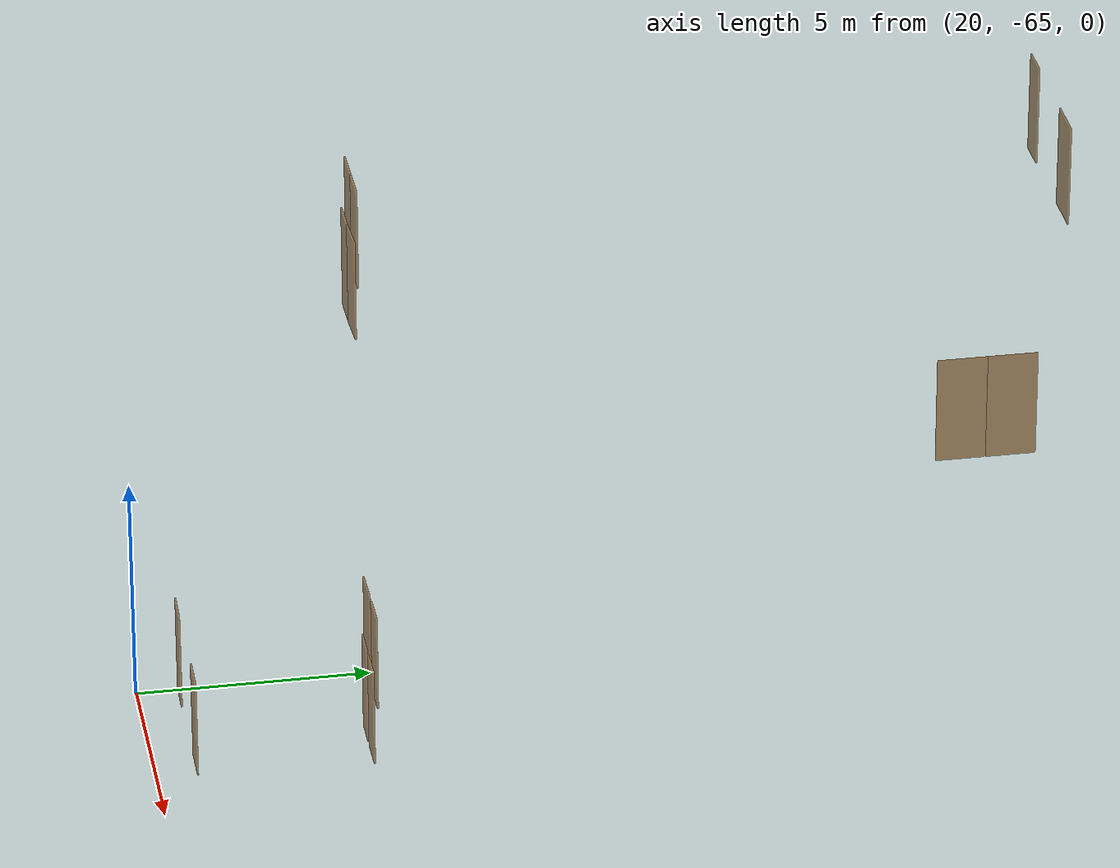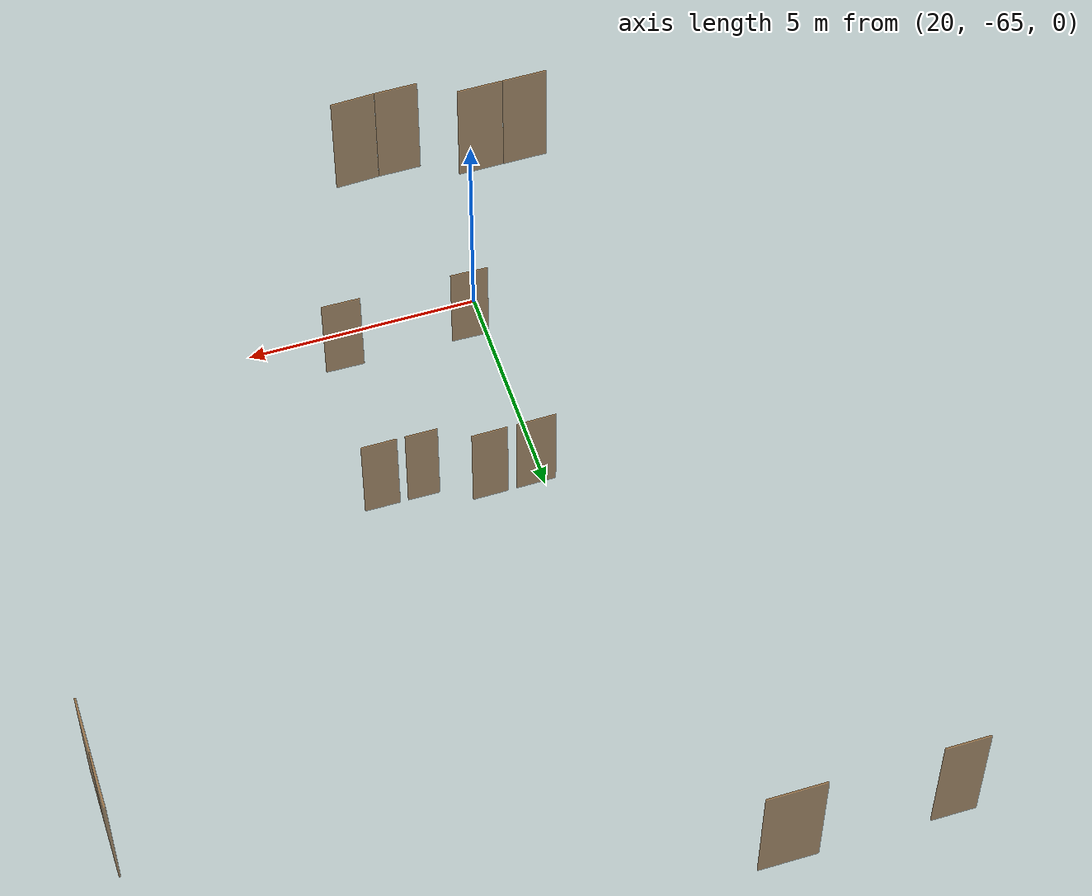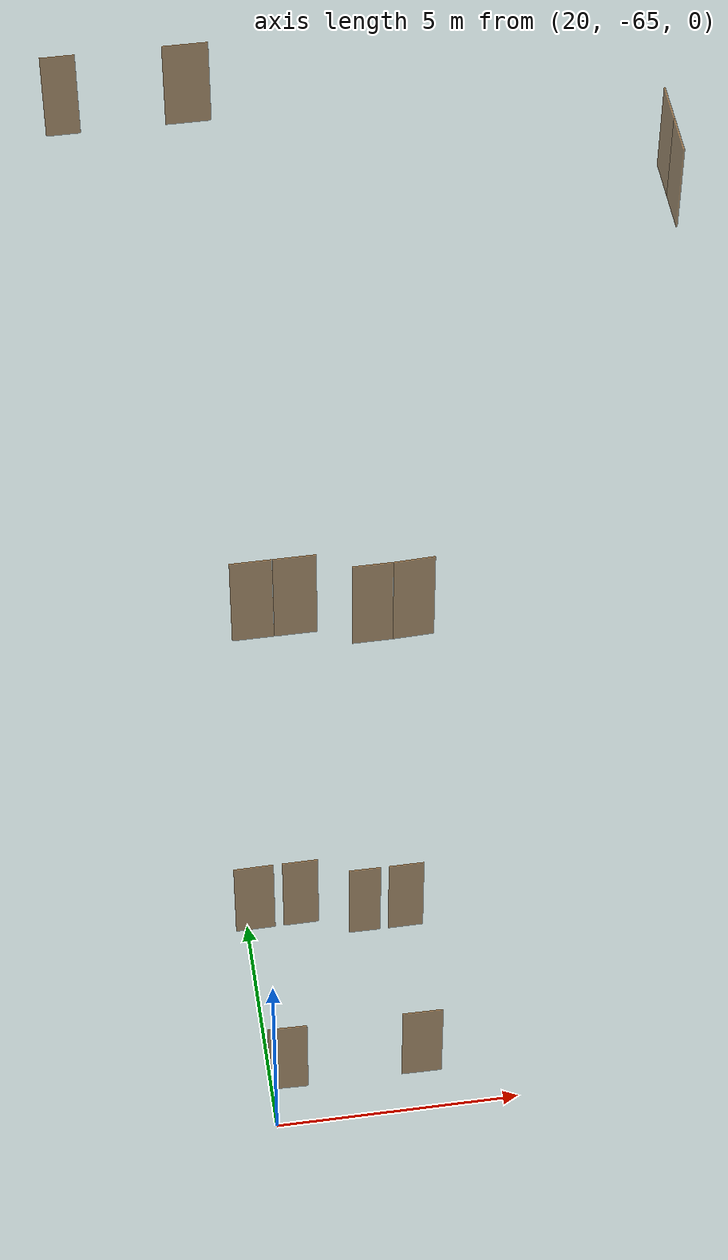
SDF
<sdf version="1.7">
 <world name="sim_world">
  <model name="part5_3">
   <pose>20.173143498738547 -60.075175110173454 0.0 0 0 -3.1320734402905437</pose>
   <link name="right">
    <pose>0 0 1.11 0 0 0</pose>
    <visual name="right_visual">
     <geometry><box><size>0.8412739938981753 0.03 2.2</size></box></geometry>
     <material>
      <ambient>0.5 0.25 0 0.6</ambient>
      <diffuse>0.5 0.25 0 0.6</diffuse>
      <pbr><metal><metalness>0.0</metalness></metal></pbr>
     </material>
    </visual>
    <collision name="right_collision">
     <geometry><box><size>0.8412739938981753 0.03 2.2</size></box></geometry>
     <surface><contact><collide_bitmask>0x02</collide_bitmask></contact></surface>
    </collision>
    <inertial>
     <mass>50.0</mass>
     <inertia><ixx>20.17041666666667</ixx><iyy>23.11559138670578</iyy><izz>2.952674720039113</izz></inertia>
    </inertial>
   </link>
   <joint name="right_joint" type="revolute">
    <parent>world</parent>
    <child>right</child>
    <axis><xyz>0 0 -1</xyz><limit><lower>0</lower><upper>1.57</upper></limit></axis>
    <pose>0.42563699694908763 0 0 0 0 0</pose>
   </joint>
   <plugin name="register_component" filename="libregister_component.so">
    <component name="Door">
     <v_max_door>0.5</v_max_door>
     <a_max_door>0.3</a_max_door>
     <a_nom_door>0.15</a_nom_door>
     <dx_min_door>0.01</dx_min_door>
     <f_max_door>500.0</f_max_door>
     <ros_interface>true</ros_interface>
     <door name="part5_3" type="SwingDoor" left_joint_name="empty_joint" right_joint_name="right_joint"/>
    </component>
   </plugin>
  </model>
  <model name="part5_4">
   <pose>21.1585172209726 -60.06836349378341 0.0 0 0 -3.134354941226034</pose>
   <link name="right">
    <pose>0 0 1.11 0 0 0</pose>
    <visual name="right_visual">
     <geometry><box><size>0.7526642721148585 0.03 2.2</size></box></geometry>
     <material>
      <ambient>0.5 0.25 0 0.6</ambient>
      <diffuse>0.5 0.25 0 0.6</diffuse>
      <pbr><metal><metalness>0.0</metalness></metal></pbr>
     </material>
    </visual>
    <collision name="right_collision">
     <geometry><box><size>0.7526642721148585 0.03 2.2</size></box></geometry>
     <surface><contact><collide_bitmask>0x02</collide_bitmask></contact></surface>
    </collision>
    <inertial>
     <mass>50.0</mass>
     <inertia><ixx>20.17041666666667</ixx><iyy>22.527097943825797</iyy><izz>2.3641812771591244</izz></inertia>
    </inertial>
   </link>
   <joint name="right_joint" type="revolute">
    <parent>world</parent>
    <child>right</child>
    <axis><xyz>0 0 1</xyz><limit><lower>0</lower><upper>1.57</upper></limit></axis>
    <pose>0.38133213605742927 0 0 0 0 0</pose>
   </joint>
   <plugin name="register_component" filename="libregister_component.so">
    <component name="Door">
     <v_max_door>0.5</v_max_door>
     <a_max_door>0.3</a_max_door>
     <a_nom_door>0.15</a_nom_door>
     <dx_min_door>0.01</dx_min_door>
     <f_max_door>500.0</f_max_door>
     <ros_interface>true</ros_interface>
     <door name="part5_4" type="SwingDoor" left_joint_name="empty_joint" right_joint_name="right_joint"/>
    </component>
   </plugin>
  </model>
  <model name="part5_5">
   <pose>22.475253214732483 -60.4579173479677 0.0 0 0 3.1318064891371975</pose>
   <link name="right">
    <pose>0 0 1.11 0 0 0</pose>
    <visual name="right_visual">
     <geometry><box><size>0.6753985658869284 0.03 2.2</size></box></geometry>
     <material>
      <ambient>0.5 0.25 0 0.6</ambient>
      <diffuse>0.5 0.25 0 0.6</diffuse>
      <pbr><metal><metalness>0.0</metalness></metal></pbr>
     </material>
    </visual>
    <collision name="right_collision">
     <geometry><box><size>0.6753985658869284 0.03 2.2</size></box></geometry>
     <surface><contact><collide_bitmask>0x02</collide_bitmask></contact></surface>
    </collision>
    <inertial>
     <mass>50.0</mass>
     <inertia><ixx>20.17041666666667</ixx><iyy>22.067346761675502</iyy><izz>1.9044300950088315</izz></inertia>
    </inertial>
   </link>
   <joint name="right_joint" type="revolute">
    <parent>world</parent>
    <child>right</child>
    <axis><xyz>0 0 -1</xyz><limit><lower>0</lower><upper>1.57</upper></limit></axis>
    <pose>0.3426992829434642 0 0 0 0 0</pose>
   </joint>
   <plugin name="register_component" filename="libregister_component.so">
    <component name="Door">
     <v_max_door>0.5</v_max_door>
     <a_max_door>0.3</a_max_door>
     <a_nom_door>0.15</a_nom_door>
     <dx_min_door>0.01</dx_min_door>
     <f_max_door>500.0</f_max_door>
     <ros_interface>true</ros_interface>
     <door name="part5_5" type="SwingDoor" left_joint_name="empty_joint" right_joint_name="right_joint"/>
    </component>
   </plugin>
  </model>
  <model name="part5_6">
   <pose>23.359848711436015 -60.46050881097593 0.0 0 0 -3.1395744714216227</pose>
   <link name="right">
    <pose>0 0 1.11 0 0 0</pose>
    <visual name="right_visual">
     <geometry><box><size>0.7453287625419571 0.03 2.2</size></box></geometry>
     <material>
      <ambient>0.5 0.25 0 0.6</ambient>
      <diffuse>0.5 0.25 0 0.6</diffuse>
      <pbr><metal><metalness>0.0</metalness></metal></pbr>
     </material>
    </visual>
    <collision name="right_collision">
     <geometry><box><size>0.7453287625419571 0.03 2.2</size></box></geometry>
     <surface><contact><collide_bitmask>0x02</collide_bitmask></contact></surface>
    </collision>
    <inertial>
     <mass>50.0</mass>
     <inertia><ixx>20.17041666666667</ixx><iyy>22.481312351134694</iyy><izz>2.3183956844680216</izz></inertia>
    </inertial>
   </link>
   <joint name="right_joint" type="revolute">
    <parent>world</parent>
    <child>right</child>
    <axis><xyz>0 0 1</xyz><limit><lower>0</lower><upper>1.57</upper></limit></axis>
    <pose>0.37766438127097857 0 0 0 0 0</pose>
   </joint>
   <plugin name="register_component" filename="libregister_component.so">
    <component name="Door">
     <v_max_door>0.5</v_max_door>
     <a_max_door>0.3</a_max_door>
     <a_nom_door>0.15</a_nom_door>
     <dx_min_door>0.01</dx_min_door>
     <f_max_door>500.0</f_max_door>
     <ros_interface>true</ros_interface>
     <door name="part5_6" type="SwingDoor" left_joint_name="empty_joint" right_joint_name="right_joint"/>
    </component>
   </plugin>
  </model>
  <model name="part5_2">
   <pose>20.356254830741022 -64.11535419415983 0.0 0 0 3.1157790251669653</pose>
   <link name="right">
    <pose>0 0 1.11 0 0 0</pose>
    <visual name="right_visual">
     <geometry><box><size>0.8000579363908907 0.03 2.2</size></box></geometry>
     <material>
      <ambient>0.5 0.25 0 0.6</ambient>
      <diffuse>0.5 0.25 0 0.6</diffuse>
      <pbr><metal><metalness>0.0</metalness></metal></pbr>
     </material>
    </visual>
    <collision name="right_collision">
     <geometry><box><size>0.8000579363908907 0.03 2.2</size></box></geometry>
     <surface><contact><collide_bitmask>0x02</collide_bitmask></contact></surface>
    </collision>
    <inertial>
     <mass>50.0</mass>
     <inertia><ixx>20.17041666666667</ixx><iyy>22.833719589925213</iyy><izz>2.6708029232585444</izz></inertia>
    </inertial>
   </link>
   <joint name="right_joint" type="revolute">
    <parent>world</parent>
    <child>right</child>
    <axis><xyz>0 0 1</xyz><limit><lower>0</lower><upper>1.57</upper></limit></axis>
    <pose>0.40502896819544537 0 0 0 0 0</pose>
   </joint>
   <plugin name="register_component" filename="libregister_component.so">
    <component name="Door">
     <v_max_door>0.5</v_max_door>
     <a_max_door>0.3</a_max_door>
     <a_nom_door>0.15</a_nom_door>
     <dx_min_door>0.01</dx_min_door>
     <f_max_door>500.0</f_max_door>
     <ros_interface>true</ros_interface>
     <door name="part5_2" type="SwingDoor" left_joint_name="empty_joint" right_joint_name="right_joint"/>
    </component>
   </plugin>
  </model>
  <model name="part5_7">
   <pose>23.12539752869158 -64.13151272821115 0.0 0 0 3.127977500458686</pose>
   <link name="right">
    <pose>0 0 1.11 0 0 0</pose>
    <visual name="right_visual">
     <geometry><box><size>0.8279786917823205 0.03 2.2</size></box></geometry>
     <material>
      <ambient>0.5 0.25 0 0.6</ambient>
      <diffuse>0.5 0.25 0 0.6</diffuse>
      <pbr><metal><metalness>0.0</metalness></metal></pbr>
     </material>
    </visual>
    <collision name="right_collision">
     <geometry><box><size>0.8279786917823205 0.03 2.2</size></box></geometry>
     <surface><contact><collide_bitmask>0x02</collide_bitmask></contact></surface>
    </collision>
    <inertial>
     <mass>50.0</mass>
     <inertia><ixx>20.17041666666667</ixx><iyy>23.023119641856518</iyy><izz>2.860202975189846</izz></inertia>
    </inertial>
   </link>
   <joint name="right_joint" type="revolute">
    <parent>world</parent>
    <child>right</child>
    <axis><xyz>0 0 -1</xyz><limit><lower>0</lower><upper>1.57</upper></limit></axis>
    <pose>0.41898934589116027 0 0 0 0 0</pose>
   </joint>
   <plugin name="register_component" filename="libregister_component.so">
    <component name="Door">
     <v_max_door>0.5</v_max_door>
     <a_max_door>0.3</a_max_door>
     <a_nom_door>0.15</a_nom_door>
     <dx_min_door>0.01</dx_min_door>
     <f_max_door>500.0</f_max_door>
     <ros_interface>true</ros_interface>
     <door name="part5_7" type="SwingDoor" left_joint_name="empty_joint" right_joint_name="right_joint"/>
    </component>
   </plugin>
  </model>
  <model name="L3_part2_2">
   <pose>20.31882610358698 -60.340602329105806 10.0 0 0 -3.1397482828974144</pose>
   <link name="right">
    <pose>0 0 1.11 0 0 0</pose>
    <visual name="right_visual">
     <geometry><box><size>0.804155812223294 0.03 2.2</size></box></geometry>
     <material>
      <ambient>0.5 0.25 0 0.6</ambient>
      <diffuse>0.5 0.25 0 0.6</diffuse>
      <pbr><metal><metalness>0.0</metalness></metal></pbr>
     </material>
    </visual>
    <collision name="right_collision">
     <geometry><box><size>0.804155812223294 0.03 2.2</size></box></geometry>
     <surface><contact><collide_bitmask>0x02</collide_bitmask></contact></surface>
    </collision>
    <inertial>
     <mass>50.0</mass>
     <inertia><ixx>20.17041666666667</ixx><iyy>22.861110709718776</iyy><izz>2.6981940430521076</izz></inertia>
    </inertial>
   </link>
   <joint name="right_joint" type="revolute">
    <parent>world</parent>
    <child>right</child>
    <axis><xyz>0 0 -1</xyz><limit><lower>0</lower><upper>1.57</upper></limit></axis>
    <pose>0.407077906111647 0 0 0 0 0</pose>
   </joint>
   <plugin name="register_component" filename="libregister_component.so">
    <component name="Door">
     <v_max_door>0.5</v_max_door>
     <a_max_door>0.3</a_max_door>
     <a_nom_door>0.15</a_nom_door>
     <dx_min_door>0.01</dx_min_door>
     <f_max_door>500.0</f_max_door>
     <ros_interface>true</ros_interface>
     <door name="L3_part2_2" type="SwingDoor" left_joint_name="empty_joint" right_joint_name="right_joint"/>
    </component>
   </plugin>
  </model>
  <model name="L3_part2_3">
   <pose>21.144527273513056 -60.33907942834051 10.0 0 0 -3.1397482828974117</pose>
   <link name="right">
    <pose>0 0 1.11 0 0 0</pose>
    <visual name="right_visual">
     <geometry><box><size>0.8272493364231991 0.03 2.2</size></box></geometry>
     <material>
      <ambient>0.5 0.25 0 0.6</ambient>
      <diffuse>0.5 0.25 0 0.6</diffuse>
      <pbr><metal><metalness>0.0</metalness></metal></pbr>
     </material>
    </visual>
    <collision name="right_collision">
     <geometry><box><size>0.8272493364231991 0.03 2.2</size></box></geometry>
     <surface><contact><collide_bitmask>0x02</collide_bitmask></contact></surface>
    </collision>
    <inertial>
     <mass>50.0</mass>
     <inertia><ixx>20.17041666666667</ixx><iyy>23.018089435885933</iyy><izz>2.855172769219264</izz></inertia>
    </inertial>
   </link>
   <joint name="right_joint" type="revolute">
    <parent>world</parent>
    <child>right</child>
    <axis><xyz>0 0 1</xyz><limit><lower>0</lower><upper>1.57</upper></limit></axis>
    <pose>0.41862466821159955 0 0 0 0 0</pose>
   </joint>
   <plugin name="register_component" filename="libregister_component.so">
    <component name="Door">
     <v_max_door>0.5</v_max_door>
     <a_max_door>0.3</a_max_door>
     <a_nom_door>0.15</a_nom_door>
     <dx_min_door>0.01</dx_min_door>
     <f_max_door>500.0</f_max_door>
     <ros_interface>true</ros_interface>
     <door name="L3_part2_3" type="SwingDoor" left_joint_name="empty_joint" right_joint_name="right_joint"/>
    </component>
   </plugin>
  </model>
  <model name="L3_part2_4">
   <pose>22.568098264345224 -60.73549250973611 10.0 0 0 -3.13974828289742</pose>
   <link name="right">
    <pose>0 0 1.11 0 0 0</pose>
    <visual name="right_visual">
     <geometry><box><size>0.7781695372663656 0.03 2.2</size></box></geometry>
     <material>
      <ambient>0.5 0.25 0 0.6</ambient>
      <diffuse>0.5 0.25 0 0.6</diffuse>
      <pbr><metal><metalness>0.0</metalness></metal></pbr>
     </material>
    </visual>
    <collision name="right_collision">
     <geometry><box><size>0.7781695372663656 0.03 2.2</size></box></geometry>
     <surface><contact><collide_bitmask>0x02</collide_bitmask></contact></surface>
    </collision>
    <inertial>
     <mass>50.0</mass>
     <inertia><ixx>20.17041666666667</ixx><iyy>22.68978261970563</iyy><izz>2.5268659530389566</izz></inertia>
    </inertial>
   </link>
   <joint name="right_joint" type="revolute">
    <parent>world</parent>
    <child>right</child>
    <axis><xyz>0 0 -1</xyz><limit><lower>0</lower><upper>1.57</upper></limit></axis>
    <pose>0.3940847686331828 0 0 0 0 0</pose>
   </joint>
   <plugin name="register_component" filename="libregister_component.so">
    <component name="Door">
     <v_max_door>0.5</v_max_door>
     <a_max_door>0.3</a_max_door>
     <a_nom_door>0.15</a_nom_door>
     <dx_min_door>0.01</dx_min_door>
     <f_max_door>500.0</f_max_door>
     <ros_interface>true</ros_interface>
     <door name="L3_part2_4" type="SwingDoor" left_joint_name="empty_joint" right_joint_name="right_joint"/>
    </component>
   </plugin>
  </model>
  <model name="L3_part2_5">
   <pose>23.36270290332027 -60.718957159946285 10.0 0 0 0.03944943802472385</pose>
   <link name="right">
    <pose>0 0 1.11 0 0 0</pose>
    <visual name="right_visual">
     <geometry><box><size>0.7916647990403984 0.03 2.2</size></box></geometry>
     <material>
      <ambient>0.5 0.25 0 0.6</ambient>
      <diffuse>0.5 0.25 0 0.6</diffuse>
      <pbr><metal><metalness>0.0</metalness></metal></pbr>
     </material>
    </visual>
    <collision name="right_collision">
     <geometry><box><size>0.7916647990403984 0.03 2.2</size></box></geometry>
     <surface><contact><collide_bitmask>0x02</collide_bitmask></contact></surface>
    </collision>
    <inertial>
     <mass>50.0</mass>
     <inertia><ixx>20.17041666666667</ixx><iyy>22.77805480849865</iyy><izz>2.6151381418319772</izz></inertia>
    </inertial>
   </link>
   <joint name="right_joint" type="revolute">
    <parent>world</parent>
    <child>right</child>
    <axis><xyz>0 0 1</xyz><limit><lower>0</lower><upper>1.57</upper></limit></axis>
    <pose>0.4008323995201992 0 0 0 0 0</pose>
   </joint>
   <plugin name="register_component" filename="libregister_component.so">
    <component name="Door">
     <v_max_door>0.5</v_max_door>
     <a_max_door>0.3</a_max_door>
     <a_nom_door>0.15</a_nom_door>
     <dx_min_door>0.01</dx_min_door>
     <f_max_door>500.0</f_max_door>
     <ros_interface>true</ros_interface>
     <door name="L3_part2_5" type="SwingDoor" left_joint_name="empty_joint" right_joint_name="right_joint"/>
    </component>
   </plugin>
  </model>
  <model name="L3_part3_1">
   <pose>17.989483441071616 -45.42983407319221 10.0 0 0 -3.1397482828974117</pose>
   <link name="right">
    <pose>0 0 1.11 0 0 0</pose>
    <visual name="right_visual">
     <geometry><box><size>0.7595848256989074 0.03 2.2</size></box></geometry>
     <material>
      <ambient>0.5 0.25 0 0.6</ambient>
      <diffuse>0.5 0.25 0 0.6</diffuse>
      <pbr><metal><metalness>0.0</metalness></metal></pbr>
     </material>
    </visual>
    <collision name="right_collision">
     <geometry><box><size>0.7595848256989074 0.03 2.2</size></box></geometry>
     <surface><contact><collide_bitmask>0x02</collide_bitmask></contact></surface>
    </collision>
    <inertial>
     <mass>50.0</mass>
     <inertia><ixx>20.17041666666667</ixx><iyy>22.57070461430017</iyy><izz>2.4077879476334982</izz></inertia>
    </inertial>
   </link>
   <joint name="right_joint" type="revolute">
    <parent>world</parent>
    <child>right</child>
    <axis><xyz>0 0 1</xyz><limit><lower>0</lower><upper>1.57</upper></limit></axis>
    <pose>0.3847924128494537 0 0 0 0 0</pose>
   </joint>
   <plugin name="register_component" filename="libregister_component.so">
    <component name="Door">
     <v_max_door>0.5</v_max_door>
     <a_max_door>0.3</a_max_door>
     <a_nom_door>0.15</a_nom_door>
     <dx_min_door>0.01</dx_min_door>
     <f_max_door>500.0</f_max_door>
     <ros_interface>true</ros_interface>
     <door name="L3_part3_1" type="SwingDoor" left_joint_name="empty_joint" right_joint_name="right_joint"/>
    </component>
   </plugin>
  </model>
  <model name="L3_part3_2">
   <pose>20.753292000526592 -45.424736579905755 10.0 0 0 -3.1397482828974175</pose>
   <link name="right">
    <pose>0 0 1.11 0 0 0</pose>
    <visual name="right_visual">
     <geometry><box><size>1.0101228982469488 0.03 2.2</size></box></geometry>
     <material>
      <ambient>0.5 0.25 0 0.6</ambient>
      <diffuse>0.5 0.25 0 0.6</diffuse>
      <pbr><metal><metalness>0.0</metalness></metal></pbr>
     </material>
    </visual>
    <collision name="right_collision">
     <geometry><box><size>1.0101228982469488 0.03 2.2</size></box></geometry>
     <surface><contact><collide_bitmask>0x02</collide_bitmask></contact></surface>
    </collision>
    <inertial>
     <mass>50.0</mass>
     <inertia><ixx>20.17041666666667</ixx><iyy>24.41811778984507</iyy><izz>4.255201123178399</izz></inertia>
    </inertial>
   </link>
   <joint name="right_joint" type="revolute">
    <parent>world</parent>
    <child>right</child>
    <axis><xyz>0 0 1</xyz><limit><lower>0</lower><upper>1.57</upper></limit></axis>
    <pose>0.5100614491234744 0 0 0 0 0</pose>
   </joint>
   <plugin name="register_component" filename="libregister_component.so">
    <component name="Door">
     <v_max_door>0.5</v_max_door>
     <a_max_door>0.3</a_max_door>
     <a_nom_door>0.15</a_nom_door>
     <dx_min_door>0.01</dx_min_door>
     <f_max_door>500.0</f_max_door>
     <ros_interface>true</ros_interface>
     <door name="L3_part3_2" type="SwingDoor" left_joint_name="empty_joint" right_joint_name="right_joint"/>
    </component>
   </plugin>
  </model>
  <model name="L3_part3_5">
   <pose>30.708193195183917 -49.297423308501024 10.0 0 0 -1.5713597078073196</pose>
   <link name="right">
    <pose>0.5017159438271349 0 1.11 0 0 0</pose>
    <visual name="right_visual">
     <geometry><box><size>0.9934318876542698 0.03 2.2</size></box></geometry>
     <material>
      <ambient>0.5 0.25 0 0.6</ambient>
      <diffuse>0.5 0.25 0 0.6</diffuse>
      <pbr><metal><metalness>0.0</metalness></metal></pbr>
     </material>
    </visual>
    <collision name="right_collision">
     <geometry><box><size>0.9934318876542698 0.03 2.2</size></box></geometry>
     <surface><contact><collide_bitmask>0x02</collide_bitmask></contact></surface>
    </collision>
    <inertial>
     <mass>50.0</mass>
     <inertia><ixx>20.17041666666667</ixx><iyy>24.27877881420136</iyy><izz>4.115862147534691</izz></inertia>
    </inertial>
   </link>
   <joint name="right_joint" type="revolute">
    <parent>world</parent>
    <child>right</child>
    <axis><xyz>0 0 -1</xyz><limit><lower>0</lower><upper>1.57</upper></limit></axis>
    <pose>0.5017159438271349 0 0 0 0 0</pose>
   </joint>
   <link name="left">
    <pose>-0.5017159438271349 0 1.11 0 0 0</pose>
    <visual name="left_visual">
     <geometry><box><size>0.9934318876542698 0.03 2.2</size></box></geometry>
     <material>
      <ambient>0.5 0.25 0 0.6</ambient>
      <diffuse>0.5 0.25 0 0.6</diffuse>
      <pbr><metal><metalness>0.0</metalness></metal></pbr>
     </material>
    </visual>
    <collision name="left_collision">
     <geometry><box><size>0.9934318876542698 0.03 2.2</size></box></geometry>
     <surface><contact><collide_bitmask>0x02</collide_bitmask></contact></surface>
    </collision>
    <inertial>
     <mass>50.0</mass>
     <inertia><ixx>20.17041666666667</ixx><iyy>24.27877881420136</iyy><izz>4.115862147534691</izz></inertia>
    </inertial>
   </link>
   <joint name="left_joint" type="revolute">
    <parent>world</parent>
    <child>left</child>
    <axis><xyz>0 0 -1</xyz><limit><lower>-1.57</lower><upper>0</upper></limit></axis>
    <pose>-0.5017159438271349 0 0 0 0 0</pose>
   </joint>
   <plugin name="register_component" filename="libregister_component.so">
    <component name="Door">
     <v_max_door>0.5</v_max_door>
     <a_max_door>0.3</a_max_door>
     <a_nom_door>0.15</a_nom_door>
     <dx_min_door>0.01</dx_min_door>
     <f_max_door>500.0</f_max_door>
     <ros_interface>true</ros_interface>
     <door name="L3_part3_5" type="DoubleSwingDoor" left_joint_name="left_joint" right_joint_name="right_joint"/>
    </component>
   </plugin>
  </model>
 </world>
</sdf>
